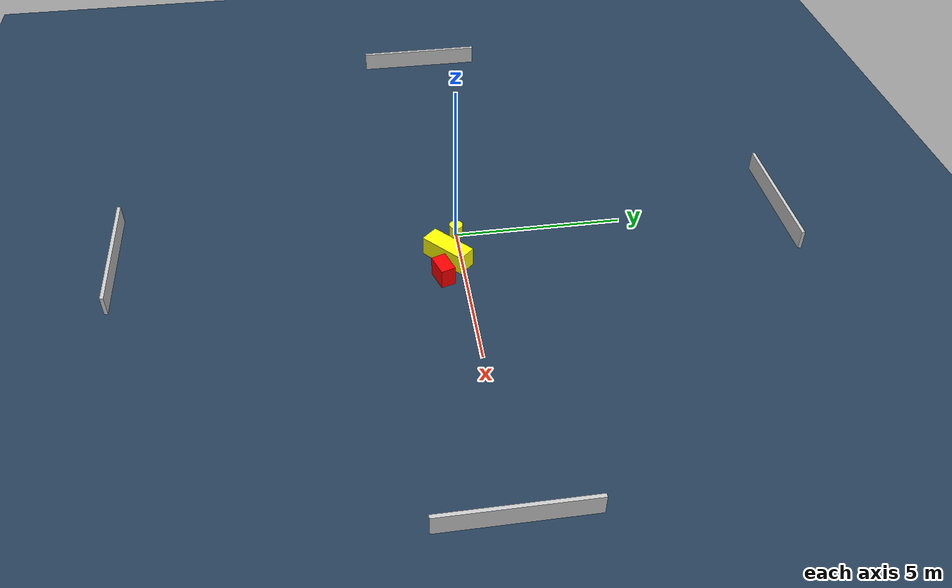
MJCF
<?xml version="1.0" ?>
<mujoco model="generated_environment">
  <option timestep="0.01" integrator="RK4" cone="elliptic"/>
  <default>
    <geom density="1"/>
  </default>
  <asset>
    <texture builtin="gradient" height="3072" name="skybox" rgb1="0.3 0.5 0.7" rgb2="0 0 0" type="skybox" width="512"/>
    <texture builtin="checker" height="300" name="groundplane" rgb1="0.2 0.3 0.4" rgb2="0.1 0.2 0.3" type="2d" width="300"/>
    <material name="groundplane" reflectance="0.2" texrepeat="5 5" texture="groundplane"/>
  </asset>
  <worldbody>
    <light dir="0 0 -1" directional="true" pos="0 0 1.5"/>
    <geom condim="3" friction="0.5 0.005 0.001" material="groundplane" name="floor" pos="0 0 0" size="0 0 0.05" type="plane"/>
    <body name="walls">
      <geom name="wall_1" condim="4" pos="-10.0 0.0 0.3" rgba="0.800000011920929 0.800000011920929 0.800000011920929 1.0" size="0.05 2.0 0.3" type="box"/>
      <geom name="wall_2" condim="4" pos="10.0 0.0 0.3" rgba="0.800000011920929 0.800000011920929 0.800000011920929 1.0" size="0.05 2.0 0.3" type="box"/>
      <geom name="wall_3" condim="4" pos="0.0 -10.0 0.3" rgba="0.800000011920929 0.800000011920929 0.800000011920929 1.0" size="2.0 0.05 0.3" type="box"/>
      <geom name="wall_4" condim="4" pos="0.0 10.0 0.3" rgba="0.800000011920929 0.800000011920929 0.800000011920929 1.0" size="2.0 0.05 0.3" type="box"/>
    </body>
    <body name="robot">
      <joint name="joint_x" type="slide" pos="0 0 0" axis="1 0 0"/>
      <joint name="joint_y" type="slide" pos="0 0 0" axis="0 1 0"/>
      <geom name="robot" type="cylinder" pos="0.0 0.0 0.2" size="0.2 0.2 0.0" mass="5.0" friction="1.0 0.005 0.0001" condim="4" rgba="1.0 1.0 0.0 1.0"/>
    </body>
    <body name="obstacle_1_movable">
      <geom name="obstacle_1_movable" condim="4" pos="1.0365707840880944 -0.3819209045895348 0.3" euler="0 0 222.64106923366649" friction="0.0 0.005 0.001" rgba="1.0 1.0 0.0 1.0" size="0.7116250172051504 0.2792536027088887 0.3" type="box" mass="0.1"/>
      <joint type="free"/>
    </body>
    <body name="obstacle_2_static">
      <geom name="obstacle_2_static" condim="4" pos="1.8512155193990163 -0.6209479575251897 0.3" euler="0 0 18.294690405346397" friction="0.0 0.005 0.001" rgba="1.0 0.0 0.0 1.0" size="0.33866276283166186 0.21465062294740866 0.3" type="box"/>
    </body>
  </worldbody>
  <actuator>
    <motor name="actuator_x" joint="joint_x" gear="1" ctrlrange="-1 1"/>
    <motor name="actuator_y" joint="joint_y" gear="1" ctrlrange="-1 1"/>
  </actuator>
</mujoco>
